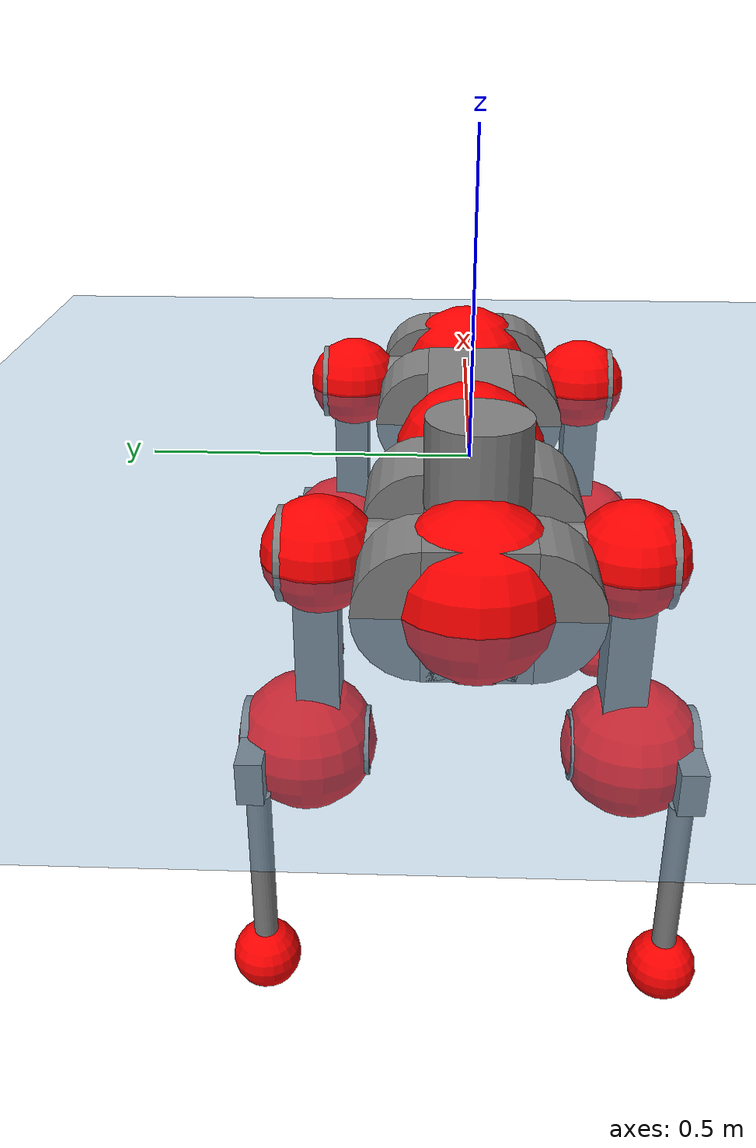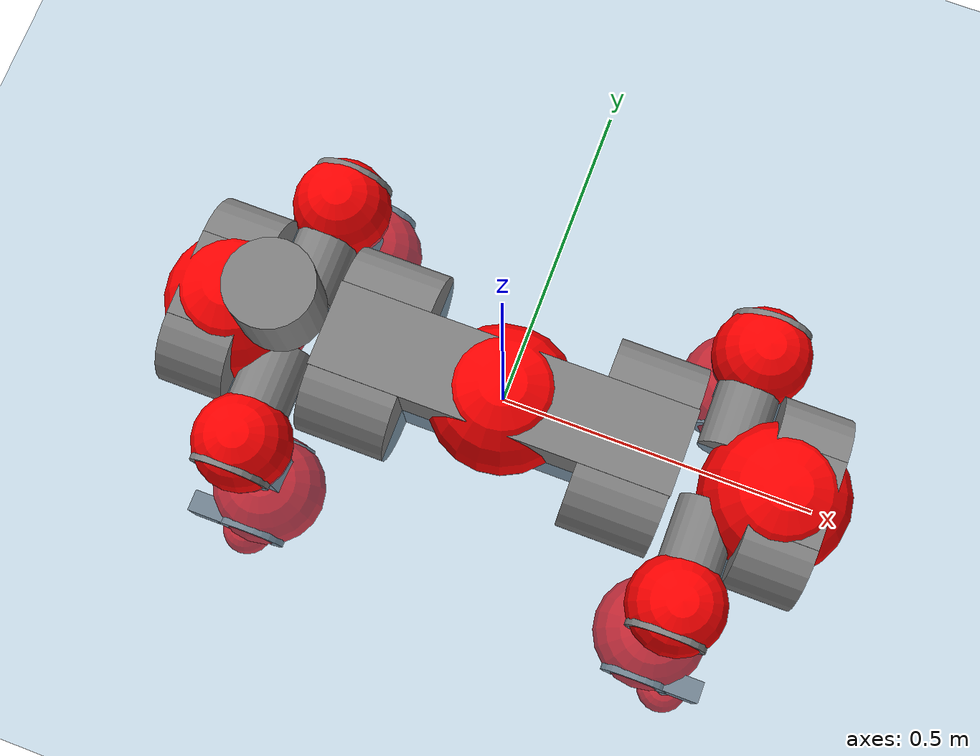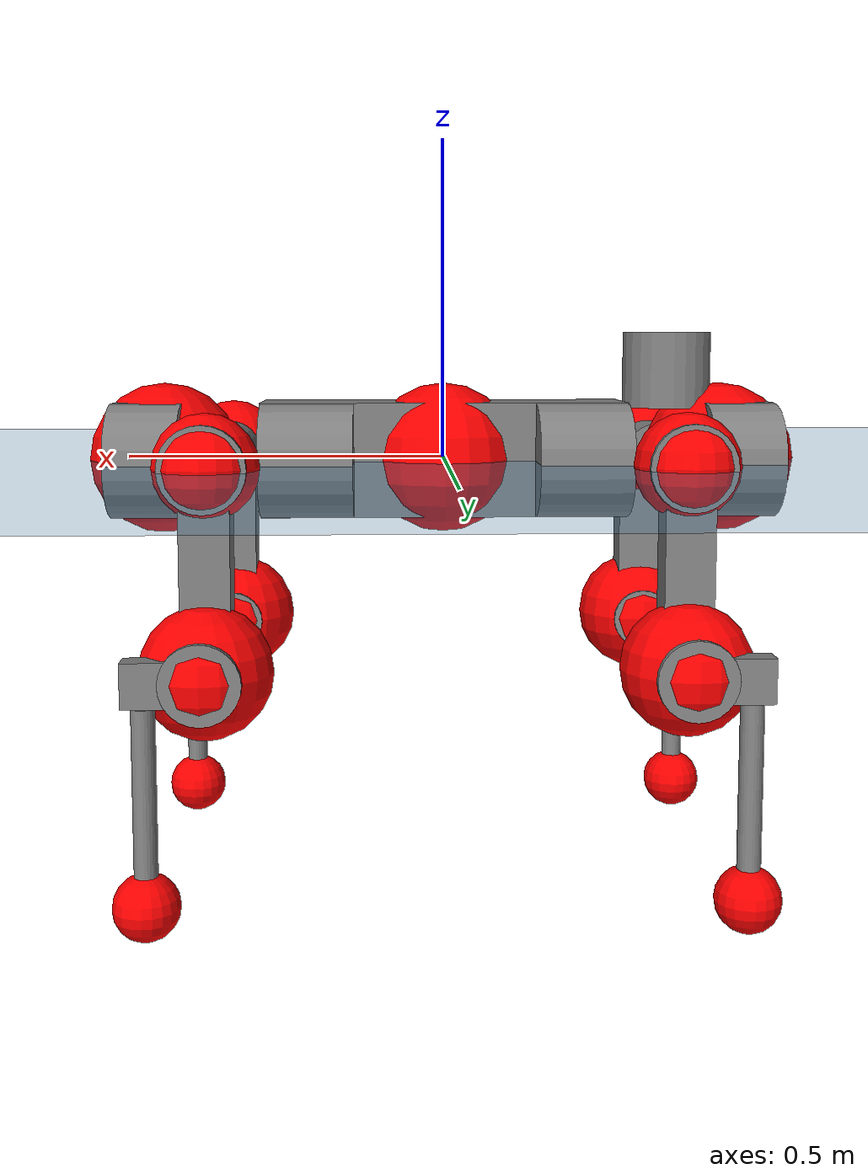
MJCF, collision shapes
<mujoco model="anymal_c">
  <compiler angle="radian" assetdir="assets" balanceinertia="true" inertiafromgeom="false"/>

  <option timestep="0.005" density="1.2" viscosity="2e-05"/>

  <size nkey="1"/>

  <visual>
    <quality shadowsize="8192"/>
    <map shadowclip="0.5"/>
  </visual>

  <default>
    <default class="/">
      <material specular="0" shininess="0.25"/>
      <geom contype="0" conaffinity="0" group="1" solref="-1000 -80"/>
      <site size="0.01 0.005 0.005" group="5"/>
      <general forcelimited="true" forcerange="-80 80" biastype="affine" gainprm="80" biasprm="0 -80 -2"/>
      <default class="anymal_c">
        <joint armature="0.01" damping="0.01" frictionloss="0.1"/>
        <default class="visual">
          <geom type="mesh" group="2"/>
          <default class="visual_zflip"/>
        </default>
        <default class="collision">
          <geom type="cylinder" group="3"/>
          <default class="foot">
            <geom size="0.03 0 0" type="sphere" condim="6" priority="1" friction="0.8 0.02 0.01" solimp="0.015 1 0.03"/>
          </default>
        </default>
      </default>
      <default class="reward_collision_sphere">
        <geom group="5" rgba="1 0 0 1"/>
      </default>
    </default>
  </default>

  <asset>
    <texture type="skybox" colorspace="auto" name="//unnamed_texture_0" builtin="gradient" rgb1="0.95 0.95 0.95" rgb2="0.95 0.95 0.95" width="100" height="600"/>
    <texture type="2d" colorspace="auto" name="texplane" builtin="checker" rgb1="0.345 0.575 0.748" rgb2="0.345 0.575 0.748" markrgb="1 1 1" width="512" height="512"/>
    <texture type="2d" colorspace="linear" name="base" file="base.png"/>
    <texture type="2d" colorspace="linear" name="top_shell" file="top_shell.png"/>
    <texture type="2d" colorspace="linear" name="bottom_shell" file="bottom_shell.png"/>
    <texture type="2d" colorspace="linear" name="remote" file="remote.png"/>
    <texture type="2d" colorspace="linear" name="hatch" file="hatch.png"/>
    <texture type="2d" colorspace="linear" name="handle" file="handle.png"/>
    <texture type="2d" colorspace="linear" name="face" file="face.png"/>
    <texture type="2d" colorspace="linear" name="battery" file="battery.png"/>
    <texture type="2d" colorspace="linear" name="lidar_cage" file="lidar_cage.png"/>
    <texture type="2d" colorspace="linear" name="depth_camera" file="depth_camera.png"/>
    <texture type="2d" colorspace="linear" name="wide_angle_camera" file="wide_angle_camera.png"/>
    <texture type="2d" colorspace="linear" name="lidar" file="lidar.png"/>
    <texture type="2d" colorspace="linear" name="drive" file="drive.png"/>
    <texture type="2d" colorspace="linear" name="hip_l" file="hip_l.png"/>
    <texture type="2d" colorspace="linear" name="shank_l" file="shank_l.png"/>
    <texture type="2d" colorspace="linear" name="foot" file="foot.png"/>
    <texture type="2d" colorspace="linear" name="thigh" file="thigh.png"/>
    <texture type="2d" colorspace="linear" name="shank_r" file="shank_r.png"/>
    <texture type="2d" colorspace="linear" name="hip_r" file="hip_r.png"/>
    <material name="MatPlane" class="/" texture="texplane" texuniform="true" texrepeat="2 2" specular="0.9" shininess="0.5"/>
    <material name="black_plastic" class="/" rgba="0.007 0.007 0.007 1"/>
    <material name="green" class="/" rgba="0.052 0.178 0.033 1"/>
    <material name="red" class="/" rgba="0.178 0.006 0.005 1"/>
    <material name="yellow" class="/" rgba="0.178 0.119 0.006 1"/>
    <material name="lwl" class="/" rgba="0.8 0.8 0.8 1"/>
    <material name="base" class="/" texture="base"/>
    <material name="top_shell" class="/" texture="top_shell"/>
    <material name="bottom_shell" class="/" texture="bottom_shell"/>
    <material name="hip_l" class="/" texture="hip_l"/>
    <material name="thigh" class="/" texture="thigh"/>
    <material name="shank_l" class="/" texture="shank_l"/>
    <material name="foot" class="/" texture="foot"/>
    <material name="hip_r" class="/" texture="hip_r"/>
    <material name="shank" class="/" texture="shank_r"/>
    <material name="hatch" class="/" texture="hatch"/>
    <material name="remote" class="/" texture="remote"/>
    <material name="handle" class="/" texture="handle"/>
    <material name="face" class="/" texture="face"/>
    <material name="depth_camera" class="/" texture="depth_camera"/>
    <material name="wide_angle_camera" class="/" texture="wide_angle_camera"/>
    <material name="battery" class="/" texture="battery"/>
    <material name="lidar_cage" class="/" texture="lidar_cage"/>
    <material name="lidar" class="/" texture="lidar"/>
    <material name="drive" class="/" texture="drive"/>
    <mesh name="base_0" class="/" file="base_0.obj"/>
    <mesh name="base_1" class="/" file="base_1.obj"/>
    <mesh name="base_2" class="/" file="base_2.obj"/>
    <mesh name="base_3" class="/" file="base_3.obj"/>
    <mesh name="base_4" class="/" file="base_4.obj"/>
    <mesh name="base_5" class="/" file="base_5.obj"/>
    <mesh name="top_shell" class="/" file="top_shell.obj"/>
    <mesh name="bottom_shell" class="/" file="bottom_shell.obj"/>
    <mesh name="remote" class="/" file="remote.obj"/>
    <mesh name="handle" class="/" file="handle.obj"/>
    <mesh name="face" class="/" file="face.obj"/>
    <mesh name="wide_angle_camera" class="/" file="wide_angle_camera.obj"/>
    <mesh name="depth_camera" class="/" file="depth_camera.obj"/>
    <mesh name="battery" class="/" file="battery.obj"/>
    <mesh name="lidar_cage" class="/" file="lidar_cage.obj"/>
    <mesh name="lidar" class="/" file="lidar.obj"/>
    <mesh name="drive" class="/" file="drive.obj"/>
    <mesh name="hip_l" class="/" file="hip_l.obj"/>
    <mesh name="thigh" class="/" file="thigh.obj"/>
    <mesh name="shank_l" class="/" file="shank_l.obj"/>
    <mesh name="foot" class="/" file="foot.obj"/>
    <mesh name="hip_r" class="/" file="hip_r.obj"/>
    <mesh name="hatch" class="/" file="hatch.obj"/>
    <mesh name="shank_r" class="/" file="shank_r.obj"/>
  </asset>

  <worldbody>
    <geom name="floor" class="/" size="100 100 0.125" type="plane" group="0" material="MatPlane"/>
    <light name="toplight_shadow" class="/" pos="0 0 5" dir="0.0990148 0.0990148 -0.990148" type="directional" ambient="0.04 0.04 0.04" diffuse="0.55 0.55 0.55" specular="0.12 0.12 0.12"/>
    <light name="toplight_fill" class="/" pos="0 0 5" dir="0.0990148 0.0990148 -0.990148" type="directional" castshadow="false" ambient="0.04 0.04 0.04" diffuse="0.3 0.3 0.3" specular="0.08 0.08 0.08"/>
    <body name="trunk" childclass="anymal_c" pos="-6.01191e-05 -0.00012301 -0.000286898" quat="1 -8.54651e-06 -1.17303e-06 3.21949e-05">
      <inertial pos="0.00207074 -0.000713407 0.0525279" quat="0.50055 0.499897 0.500297 0.499255" mass="18.8201" diaginertia="0.582045 0.469008 0.26933"/>
      <joint name="//unnamed_joint_0" type="free" armature="0" damping="0" frictionloss="0"/>
      <geom name="//unnamed_geom_1" class="visual" material="green" mesh="base_0"/>
      <geom name="//unnamed_geom_2" class="visual" material="yellow" mesh="base_1"/>
      <geom name="//unnamed_geom_3" class="visual" material="red" mesh="base_2"/>
      <geom name="//unnamed_geom_4" class="visual" material="black_plastic" mesh="base_3"/>
      <geom name="//unnamed_geom_5" class="visual" material="lwl" mesh="base_4"/>
      <geom name="//unnamed_geom_6" class="visual" material="base" mesh="base_5"/>
      <geom name="trunk_1" class="collision" size="0.286931 0.0692593 0.0890476" type="box"/>
      <geom name="trunk_2" class="collision" size="0.0890476 0.0717328" pos="0.213217 0.0661347 0" quat="0.707107 0 0.707107 0"/>
      <geom name="trunk_3" class="collision" size="0.0890476 0.0717328" pos="-0.213217 0.0661347 0" quat="0.707107 0 0.707107 0"/>
      <geom name="trunk_4" class="collision" size="0.0890476 0.0717328" pos="0.213217 -0.0661347 0" quat="0.707107 0 0.707107 0"/>
      <geom name="trunk_5" class="collision" size="0.0890476 0.0717328" pos="-0.213217 -0.0661347 0" quat="0.707107 0 0.707107 0"/>
      <geom name="//unnamed_geom_12" class="visual" material="top_shell" mesh="top_shell"/>
      <geom name="//unnamed_geom_13" class="visual" material="bottom_shell" mesh="bottom_shell"/>
      <geom name="//unnamed_geom_14" class="visual" material="remote" mesh="remote"/>
      <geom name="//unnamed_geom_15" class="visual" material="handle" mesh="handle"/>
      <geom name="//unnamed_geom_16" class="visual" pos="0.406339 0 0" quat="1 0 0 0" material="face" mesh="face"/>
      <geom name="trunk_6" class="collision" size="0.054418 0.0692593 0.0890476" pos="0.460256 0 0" type="box"/>
      <geom name="//unnamed_geom_18" class="collision" size="0.0890476 0.054418" pos="0.460256 0.0661347 0" quat="0.707107 0 0.707107 0"/>
      <geom name="//unnamed_geom_19" class="collision" size="0.0890476 0.054418" pos="0.460256 -0.0661347 0" quat="0.707107 0 0.707107 0"/>
      <geom name="//unnamed_geom_20" class="visual" pos="0.452563 0 -0.030938" quat="0.965926 0 0.258819 0" material="depth_camera" mesh="depth_camera"/>
      <geom name="//unnamed_geom_21" class="visual" pos="0.502899 0 0.0156161" material="wide_angle_camera" mesh="wide_angle_camera"/>
      <geom name="//unnamed_geom_22" class="visual_zflip" pos="-0.406339 0 0" quat="0 0 0 1" material="face" mesh="face"/>
      <geom name="trunk_7" class="collision" size="0.054418 0.0692593 0.0890476" pos="-0.460256 0 0" quat="0 0 0 1" type="box"/>
      <geom name="//unnamed_geom_24" class="collision" size="0.0890476 0.054418" pos="-0.460256 -0.0661347 0" quat="0 -0.707107 0 0.707107"/>
      <geom name="//unnamed_geom_25" class="collision" size="0.0890476 0.054418" pos="-0.460256 0.0661347 0" quat="0 -0.707107 0 0.707107"/>
      <geom name="//unnamed_geom_26" class="visual" pos="-0.452563 0 -0.030938" quat="0 -0.258819 0 0.965926" material="depth_camera" mesh="depth_camera"/>
      <geom name="//unnamed_geom_27" class="visual_zflip" pos="-0.502899 0 0.0156161" quat="0 0 0 1" material="wide_angle_camera" mesh="wide_angle_camera"/>
      <geom name="//unnamed_geom_28" class="visual" material="battery" mesh="battery"/>
      <geom name="//unnamed_geom_29" class="visual" pos="0 0.0717744 0.0298262" quat="0.683013 -0.183013 0.183013 0.683013" material="depth_camera" mesh="depth_camera"/>
      <geom name="//unnamed_geom_30" class="visual" pos="0 -0.0717744 0.0298262" quat="0.683013 0.183013 0.183013 -0.683013" material="depth_camera" mesh="depth_camera"/>
      <geom name="//unnamed_geom_31" class="visual" pos="-0.356833 0 0.0766725" quat="1 0 0 0" material="lidar_cage" mesh="lidar_cage"/>
      <geom name="trunk_8" class="collision" size="0.0692593 0.0593651" pos="-0.356833 0 0.139262"/>
      <geom name="//unnamed_geom_33" class="visual" pos="-0.356833 -1.39583e-05 0.148338" quat="0.707107 0 0 -0.707107" material="lidar" mesh="lidar"/>
      <geom name="//unnamed_geom_34" class="visual" pos="0.293995 0.0982922 -1.69709e-09" quat="0.258819 0.965926 0 0" material="drive" mesh="drive"/>
      <geom name="//unnamed_geom_35" class="visual" pos="0.293995 -0.0982922 1.69709e-09" quat="0.258819 -0.965926 0 0" material="drive" mesh="drive"/>
      <geom name="//unnamed_geom_36" class="visual" pos="-0.293995 0.0982922 1.69709e-09" quat="0 0 0.965926 -0.258819" material="drive" mesh="drive"/>
      <geom name="//unnamed_geom_37" class="visual" pos="-0.293995 -0.0982922 -1.69709e-09" quat="0 0 -0.965926 -0.258819" material="drive" mesh="drive"/>
      <geom name="//unnamed_geom_38" class="visual" pos="0.113716 0 0.0761509" quat="1 0 0 0" material="hatch" mesh="hatch"/>
      <geom name="//unnamed_geom_39" class="reward_collision_sphere" size="0.11873"/>
      <geom name="//unnamed_geom_40" class="reward_collision_sphere" size="0.11873" pos="0.44114 0 0"/>
      <geom name="//unnamed_geom_41" class="reward_collision_sphere" size="0.11873" pos="-0.44114 0 0"/>
      <site name="imu" pos="0.245783 0.00396487 0.0519232" size="0.00989418"/>
      <camera name="track" pos="0 -1.88956 0" quat="0.707107 0.707107 0 0" mode="trackcom"/>
      <camera name="ego_camera" pos="0.44114 0 -0.0417265" quat="-0.5 -0.5 0.5 0.5"/>
      <body name="LF_HIP" pos="0.294453 0.0982292 -0.000667911" quat="0.258699 0.965958 7.56641e-05 -0.00014486">
        <inertial pos="0.0558411 -0.0140849 -0.00881184" quat="-0.127835 0.709531 -0.136199 0.679466" mass="2.71973" diaginertia="0.00529816 0.00371875 0.00410377"/>
        <joint name="LF_HAA" pos="0 0 0" axis="0.999988 -0.00444299 -0.00213154" range="-0.722047 0.476828" armature="0.00987807" damping="0.0144143" frictionloss="0.0957332"/>
        <geom name="//unnamed_geom_42" class="visual" pos="0 -9.9832e-05 1.63973e-05" quat="0.258819 -0.965926 0 0" material="hip_l" mesh="hip_l"/>
        <geom name="//unnamed_geom_43" class="visual" pos="0.0587206 -0.0707196 -0.0415577" quat="0.183013 -0.683013 0.683013 0.183013" material="drive" mesh="drive"/>
        <geom name="//unnamed_geom_44" class="collision" size="0.0494709 0.0692593" pos="0.0587206 -0.0112994 -0.00720304" quat="-0.353553 -0.612372 0.612372 -0.353553"/>
        <body name="LF_THIGH" pos="0.0597671 -0.069823 -0.0441646" quat="0.183046 -0.683082 0.682942 0.182985">
          <inertial pos="0.0303654 0.000227894 -0.256099" quat="0.993156 -0.00633764 -0.0813015 0.083609" mass="3.00693" diaginertia="0.0276716 0.0226054 0.00523768"/>
          <joint name="LF_HFE" pos="0 0 0" axis="0.999995 0.00178518 -0.00278089" stiffness="0.00373037" range="-3.12736 3.13977" armature="0.010266" damping="0.00449139" frictionloss="0.0990165"/>
          <geom name="//unnamed_geom_45" class="visual" pos="0.000706881 1.11388e-06 0" quat="0.707107 0 0 -0.707107" material="thigh" mesh="thigh"/>
          <geom name="//unnamed_geom_46" class="collision" size="0.0643122 0.0395767" pos="0.0392124 0 0" quat="0.5 0.5 -0.5 -0.5"/>
          <geom name="//unnamed_geom_47" class="collision" size="0.0371032 0.0296825 0.139819" pos="0.0294093 0 -0.147414" quat="0.707107 0 0 -0.707107" type="box"/>
          <geom name="//unnamed_geom_48" class="visual" pos="0.0983251 0 -0.297301" quat="1 0 0 0" material="drive" mesh="drive"/>
          <geom name="//unnamed_geom_49" class="collision" size="0.0494709 0.0692593" pos="0.0297034 0 -0.297301" quat="0.707107 0 0.707107 0"/>
          <geom name="//unnamed_geom_50" class="reward_collision_sphere" size="0.0791535" pos="0.0245078 0 0"/>
          <body name="LF_SHANK" pos="0.0987677 -0.000348522 -0.29743" quat="1 -3.71924e-06 -7.51494e-07 -1.27355e-05">
            <inertial pos="0.00463084 -0.0578829 -0.0840786" quat="0.992924 -0.116086 -0.00148093 -0.0249795" mass="0.569969" diaginertia="0.0092175 0.00693138 0.001384"/>
            <joint name="LF_KFE" pos="0 0 0" axis="0.999997 0.0018847 -0.00138056" stiffness="0.000159503" range="-3.15271 3.12401" armature="0.00967983" damping="0.00777266" frictionloss="0.101026"/>
            <geom name="//unnamed_geom_51" class="visual" pos="0.000230498 0.00122903 0" quat="0.707107 0 0 -0.707107" material="shank_l" mesh="shank_l"/>
            <geom name="LF_kfe_act" class="collision" size="0.0593651 0.0197884" pos="0.0196062 0 0" quat="0.5 0.5 -0.5 -0.5"/>
            <geom name="//unnamed_geom_53" class="collision" size="0.0568906 0.0333929 0.0187989" pos="0.0196062 -0.054324 0" quat="0.5 0.5 -0.5 -0.5" type="box"/>
            <geom name="//unnamed_geom_54" class="visual" pos="0.012793 -0.0826975 -0.352558" quat="0.382683 0 0 -0.92388" material="foot" mesh="foot"/>
            <geom name="LF_calf" class="collision" size="0.0173148 0.139757" pos="0.012793 -0.0830935 -0.176279" quat="0.707107 0 0 -0.707107"/>
            <geom name="LF_foot" class="foot" size="0.0300198" pos="0.012793 -0.0830935 -0.329087" quat="0.707107 0 0 -0.707107"/>
            <geom name="//unnamed_geom_57" class="reward_collision_sphere" size="0.0989418" pos="-0.0490155 0 0"/>
            <geom name="//unnamed_geom_58" class="reward_collision_sphere" size="0.0494709" pos="0.012793 -0.0830935 -0.329087"/>
            <site name="LF_foot" class="foot" pos="0.012793 -0.0830935 -0.329087" quat="0.707107 0 0 -0.707107" size="0.00989418"/>
          </body>
        </body>
      </body>
      <body name="RF_HIP" pos="0.295028 -0.0985998 -0.000368441" quat="0.258886 -0.965908 0.0001832 -6.43316e-05">
        <inertial pos="0.0557183 0.0148572 -0.00864344" quat="0.133674 0.678553 0.128131 0.71083" mass="2.69443" diaginertia="0.00530295 0.00367969 0.00405058"/>
        <joint name="RF_HAA" pos="0 0 0" axis="0.999989 -0.00337416 -0.00320153" range="-0.498143 0.733167" armature="0.0101238" damping="0.0136618" frictionloss="0.0946809"/>
        <geom name="//unnamed_geom_59" class="visual" pos="0 9.98312e-05 1.63973e-05" quat="0.258819 0.965926 0 0" material="hip_r" mesh="hip_r"/>
        <geom name="//unnamed_geom_60" class="visual" pos="0.0587206 0.0707196 -0.0415577" quat="0.183013 0.683013 0.683013 -0.183013" material="drive" mesh="drive"/>
        <geom name="//unnamed_geom_61" class="collision" size="0.0494709 0.0692593" pos="0.0587206 0.0112994 -0.00720304" quat="-0.353553 0.612372 0.612372 0.353553"/>
        <body name="RF_THIGH" pos="0.0592439 0.069508 -0.0437644" quat="0.182994 0.682927 0.683038 -0.183258">
          <inertial pos="0.0307063 2.8105e-05 -0.256452" quat="0.992661 -0.00370882 -0.0822106 0.0886077" mass="2.94478" diaginertia="0.0273689 0.0226743 0.0051474"/>
          <joint name="RF_HFE" pos="0 0 0" axis="0.999999 0.000506683 -0.00110491" stiffness="0.00164096" range="-3.14362 3.15466" armature="0.0100506" damping="0.00288007" frictionloss="0.102434"/>
          <geom name="//unnamed_geom_62" class="visual" pos="0.000706881 1.11388e-06 0" quat="0.707107 0 0 -0.707107" material="thigh" mesh="thigh"/>
          <geom name="//unnamed_geom_63" class="collision" size="0.0643122 0.0395767" pos="0.0392124 0 0" quat="0.5 0.5 0.5 0.5"/>
          <geom name="//unnamed_geom_64" class="collision" size="0.0371032 0.0296825 0.139819" pos="0.0294093 0 -0.147414" quat="0.707107 0 0 0.707107" type="box"/>
          <geom name="//unnamed_geom_65" class="visual" pos="0.0983251 0 -0.297301" quat="1 0 0 0" material="drive" mesh="drive"/>
          <geom name="//unnamed_geom_66" class="collision" size="0.0494709 0.0692593" pos="0.0297034 0 -0.297301" quat="0.707107 0 0.707107 0"/>
          <geom name="//unnamed_geom_67" class="reward_collision_sphere" size="0.0791535" pos="0.0245078 0 0"/>
          <body name="RF_SHANK" pos="0.0979256 0.00052452 -0.297007" quat="1 -1.47722e-05 0.000126272 0.000159314">
            <inertial pos="0.00509043 0.0581072 -0.0846782" quat="0.993096 0.114361 0.00104182 0.0261012" mass="0.569539" diaginertia="0.0092473 0.00693338 0.00139977"/>
            <joint name="RF_KFE" pos="0 0 0" axis="0.999997 0.00211209 0.00114632" range="-3.13294 3.13789" armature="0.0099857" damping="0.0111916" frictionloss="0.101526"/>
            <geom name="//unnamed_geom_68" class="visual" pos="0.000230497 -0.00122903 0" quat="0.707107 0 0 0.707107" material="shank" mesh="shank_r"/>
            <geom name="RF_kfe_act" class="collision" size="0.0593651 0.0197884" pos="0.0196062 0 0" quat="0.5 0.5 0.5 0.5"/>
            <geom name="//unnamed_geom_70" class="collision" size="0.0568906 0.0333929 0.0187989" pos="0.0196062 0.054324 0" quat="0.5 0.5 0.5 0.5" type="box"/>
            <geom name="//unnamed_geom_71" class="visual" pos="0.0127931 0.0826975 -0.352558" quat="0.382683 0 0 0.92388" material="foot" mesh="foot"/>
            <geom name="RF_calf" class="collision" size="0.0173148 0.139757" pos="0.012793 0.0830935 -0.176279" quat="0.707107 0 0 0.707107"/>
            <geom name="RF_foot" class="foot" size="0.0298581" pos="0.012793 0.0830935 -0.329087" quat="0.707107 0 0 0.707107"/>
            <geom name="//unnamed_geom_74" class="reward_collision_sphere" size="0.0989418" pos="-0.0490155 0 0"/>
            <geom name="//unnamed_geom_75" class="reward_collision_sphere" size="0.0494709" pos="0.012793 0.0830935 -0.329087"/>
            <site name="RF_foot" class="foot" pos="0.012793 0.0830935 -0.329087" quat="0.707107 0 0 0.707107" size="0.00989418"/>
          </body>
        </body>
      </body>
      <body name="LH_HIP" pos="-0.29331 0.0991382 -7.17751e-05" quat="0.00019531 -0.00018528 0.965932 -0.258796">
        <inertial pos="0.0553185 0.0143881 -0.00907541" quat="0.135523 0.679063 0.128197 0.70998" mass="2.7256" diaginertia="0.00538869 0.00373419 0.00414251"/>
        <joint name="LH_HAA" pos="0 0 0" axis="1 3.96509e-05 -5.22305e-07" range="-0.487093 0.720996" armature="0.00963499" damping="0.00726552" frictionloss="0.0990747"/>
        <geom name="//unnamed_geom_76" class="visual" pos="0 9.98312e-05 1.63973e-05" quat="-0.258819 -0.965926 0 0" material="hip_r" mesh="hip_r"/>
        <geom name="//unnamed_geom_77" class="visual" pos="0.0587206 0.0707196 -0.0415577" quat="0.183013 0.683013 0.683013 -0.183013" material="drive" mesh="drive"/>
        <geom name="//unnamed_geom_78" class="collision" size="0.0494709 0.0692593" pos="0.0587206 0.0112994 -0.00720304" quat="-0.353553 0.612372 0.612372 0.353553"/>
        <body name="LH_THIGH" pos="0.0579355 0.0688901 -0.0431957" quat="0.182966 0.683026 0.683073 -0.182784">
          <inertial pos="0.0308397 0.000740986 -0.256574" quat="0.992785 -0.00514772 -0.0805937 0.0886343" mass="3.0059" diaginertia="0.0276088 0.0227231 0.0051581"/>
          <joint name="LH_HFE" pos="0 0 0" axis="0.999998 -0.00142871 -0.00166589" range="-3.12435 3.13791" armature="0.00990072" damping="0.00414846" frictionloss="0.0971729"/>
          <geom name="//unnamed_geom_79" class="visual" pos="0.000706881 1.11388e-06 0" quat="0.707107 0 0 -0.707107" material="thigh" mesh="thigh"/>
          <geom name="//unnamed_geom_80" class="collision" size="0.0643122 0.0395767" pos="0.0392124 0 0" quat="0.5 0.5 -0.5 -0.5"/>
          <geom name="//unnamed_geom_81" class="collision" size="0.0371032 0.0296825 0.139819" pos="0.0294093 0 -0.147414" quat="0.707107 0 0 -0.707107" type="box"/>
          <geom name="//unnamed_geom_82" class="visual" pos="0.0983251 0 -0.297301" quat="1 0 0 0" material="drive" mesh="drive"/>
          <geom name="//unnamed_geom_83" class="collision" size="0.0494709 0.0692593" pos="0.0297034 0 -0.297301" quat="0.707107 0 0.707107 0"/>
          <geom name="//unnamed_geom_84" class="reward_collision_sphere" size="0.0791535" pos="0.0245078 0 0"/>
          <body name="LH_SHANK" pos="0.0989624 -0.00110497 -0.297389" quat="1 -5.38067e-05 -0.000178477 0.000121453">
            <inertial pos="0.0051586 0.0569708 -0.0846271" quat="0.992941 0.115638 -0.000566972 0.0263756" mass="0.574743" diaginertia="0.00931155 0.00708053 0.00139286"/>
            <joint name="LH_KFE" pos="0 0 0" axis="0.999998 0.00208379 7.8467e-05" range="-3.14228 3.12709" armature="0.00975168" damping="0.00387871" frictionloss="0.0991959"/>
            <geom name="//unnamed_geom_85" class="visual" pos="0.000230497 -0.00122903 0" quat="-0.707107 0 0 -0.707107" material="shank" mesh="shank_r"/>
            <geom name="LH_kfe_act" class="collision" size="0.0593651 0.0197884" pos="0.0196062 0 0" quat="0.5 0.5 -0.5 -0.5"/>
            <geom name="//unnamed_geom_87" class="collision" size="0.0568906 0.0333929 0.0187989" pos="0.0196062 0.054324 0" quat="0.5 0.5 -0.5 -0.5" type="box"/>
            <geom name="//unnamed_geom_88" class="visual" pos="0.0127931 0.0826975 -0.352558" quat="-0.382683 0 0 -0.92388" material="foot" mesh="foot"/>
            <geom name="LH_calf" class="collision" size="0.0173148 0.139757" pos="0.012793 0.0830935 -0.176279" quat="0.707107 0 0 -0.707107"/>
            <geom name="LH_foot" class="foot" size="0.0307605" pos="0.012793 0.0830935 -0.329087" quat="0.707107 0 0 -0.707107"/>
            <geom name="//unnamed_geom_91" class="reward_collision_sphere" size="0.0989418" pos="-0.0490155 0 0"/>
            <geom name="//unnamed_geom_92" class="reward_collision_sphere" size="0.0494709" pos="0.012793 0.0830935 -0.329087"/>
            <site name="LH_foot" class="foot" pos="0.012793 0.0830935 -0.329087" quat="0.707107 0 0 -0.707107" size="0.00989418"/>
          </body>
        </body>
      </body>
      <body name="RH_HIP" pos="-0.293352 -0.0982481 -0.00039881" quat="-9.2065e-05 -7.83051e-05 -0.965874 -0.259014">
        <inertial pos="0.0562067 -0.0137451 -0.00880062" quat="-0.127752 0.709306 -0.135194 0.679917" mass="2.67865" diaginertia="0.00532408 0.00372444 0.00404598"/>
        <joint name="RH_HAA" pos="0 0 0" axis="0.999988 0.00145612 -0.0046999" stiffness="0.000267428" range="-0.712581 0.492976" armature="0.00986541" damping="0.0110846" frictionloss="0.101897"/>
        <geom name="//unnamed_geom_93" class="visual" pos="0 -9.9832e-05 1.63973e-05" quat="-0.258819 0.965926 0 0" material="hip_l" mesh="hip_l"/>
        <geom name="//unnamed_geom_94" class="visual" pos="0.0587206 -0.0707196 -0.0415577" quat="-0.183013 0.683013 -0.683013 -0.183013" material="drive" mesh="drive"/>
        <geom name="//unnamed_geom_95" class="collision" size="0.0494709 0.0692593" pos="0.0587206 -0.0112994 -0.00720304" quat="0.353553 0.612372 -0.612372 0.353553"/>
        <body name="RH_THIGH" pos="0.0587763 -0.0685213 -0.0434115" quat="-0.183027 0.682932 -0.683143 -0.182811">
          <inertial pos="0.0301209 0.000663163 -0.255748" quat="0.992997 -0.0019343 -0.0799019 0.0869947" mass="2.94366" diaginertia="0.02712 0.0223872 0.00517882"/>
          <joint name="RH_HFE" pos="0 0 0" axis="0.999998 -0.00155498 0.00100061" range="-3.13647 3.15831" armature="0.00987963" damping="0.0114903" frictionloss="0.0967094"/>
          <geom name="//unnamed_geom_96" class="visual" pos="0.000706881 1.11388e-06 0" quat="0.707107 0 0 -0.707107" material="thigh" mesh="thigh"/>
          <geom name="//unnamed_geom_97" class="collision" size="0.0643122 0.0395767" pos="0.0392124 0 0" quat="0.5 0.5 0.5 0.5"/>
          <geom name="//unnamed_geom_98" class="collision" size="0.0371032 0.0296825 0.139819" pos="0.0294093 0 -0.147414" quat="0.707107 0 0 0.707107" type="box"/>
          <geom name="//unnamed_geom_99" class="visual" pos="0.0983251 0 -0.297301" quat="1 0 0 0" material="drive" mesh="drive"/>
          <geom name="//unnamed_geom_100" class="collision" size="0.0494709 0.0692593" pos="0.0297034 0 -0.297301" quat="0.707107 0 0.707107 0"/>
          <geom name="//unnamed_geom_101" class="reward_collision_sphere" size="0.0791535" pos="0.0245078 0 0"/>
          <body name="RH_SHANK" pos="0.0977152 -0.00050377 -0.296713" quat="1 -0.00020705 -0.000130303 0.00013381">
            <inertial pos="0.00564238 -0.057649 -0.0840766" quat="0.992856 -0.116576 -0.00150414 -0.0254039" mass="0.561282" diaginertia="0.00908254 0.00682692 0.00136912"/>
            <joint name="RH_KFE" pos="0 0 0" axis="0.999975 -0.00613365 0.00345425" range="-3.13208 3.12653" armature="0.0098851" damping="0.00571033" frictionloss="0.0967867"/>
            <geom name="//unnamed_geom_102" class="visual" pos="0.000230498 0.00122903 0" quat="0.707107 0 0 -0.707107" material="shank_l" mesh="shank_l"/>
            <geom name="RH_kfe_act" class="collision" size="0.0593651 0.0197884" pos="0.0196062 0 0" quat="0.5 0.5 0.5 0.5"/>
            <geom name="//unnamed_geom_104" class="collision" size="0.0568906 0.0333929 0.0187989" pos="0.0196062 -0.054324 0" quat="0.5 0.5 0.5 0.5" type="box"/>
            <geom name="//unnamed_geom_105" class="visual" pos="0.012793 -0.0826975 -0.352558" quat="0.382683 0 0 -0.92388" material="foot" mesh="foot"/>
            <geom name="RH_calf" class="collision" size="0.0173148 0.139757" pos="0.012793 -0.0830935 -0.176279" quat="0.707107 0 0 0.707107"/>
            <geom name="RH_foot" class="foot" size="0.0283829" pos="0.012793 -0.0830935 -0.329087" quat="0.707107 0 0 0.707107"/>
            <geom name="//unnamed_geom_108" class="reward_collision_sphere" size="0.0989418" pos="-0.0490155 0 0"/>
            <geom name="//unnamed_geom_109" class="reward_collision_sphere" size="0.0494709" pos="0.012793 -0.0830935 -0.329087"/>
            <site name="RH_foot" class="foot" pos="0.012793 -0.0830935 -0.329087" quat="0.707107 0 0 0.707107" size="0.00989418"/>
          </body>
        </body>
      </body>
    </body>
  </worldbody>

  <contact>
    <pair class="/" geom1="floor" geom2="LF_foot" name="//unnamed_contact_0"/>
    <pair class="/" geom1="floor" geom2="RF_foot" name="//unnamed_contact_1"/>
    <pair class="/" geom1="floor" geom2="LH_foot" name="//unnamed_contact_2"/>
    <pair class="/" geom1="floor" geom2="RH_foot" name="//unnamed_contact_3"/>
  </contact>

  <actuator>
    <general name="LF_HAA" class="/" joint="LF_HAA" forcerange="-79.7566 79.7566" gainprm="79.9548" biasprm="0 -79.9548 -1.96953"/>
    <general name="LF_HFE" class="/" joint="LF_HFE" forcerange="-80.66 80.66" gainprm="79.9548" biasprm="0 -79.9548 -1.96953"/>
    <general name="LF_KFE" class="/" joint="LF_KFE" forcerange="-77.0377 77.0377" gainprm="79.9548" biasprm="0 -79.9548 -1.96953"/>
    <general name="RF_HAA" class="/" joint="RF_HAA" forcerange="-79.325 79.325" gainprm="79.9548" biasprm="0 -79.9548 -1.96953"/>
    <general name="RF_HFE" class="/" joint="RF_HFE" forcerange="-77.742 77.742" gainprm="79.9548" biasprm="0 -79.9548 -1.96953"/>
    <general name="RF_KFE" class="/" joint="RF_KFE" forcerange="-78.9606 78.9606" gainprm="79.9548" biasprm="0 -79.9548 -1.96953"/>
    <general name="LH_HAA" class="/" joint="LH_HAA" forcerange="-79.1673 79.1673" gainprm="79.9548" biasprm="0 -79.9548 -1.96953"/>
    <general name="LH_HFE" class="/" joint="LH_HFE" forcerange="-79.1544 79.1544" gainprm="79.9548" biasprm="0 -79.9548 -1.96953"/>
    <general name="LH_KFE" class="/" joint="LH_KFE" forcerange="-79.6152 79.6152" gainprm="79.9548" biasprm="0 -79.9548 -1.96953"/>
    <general name="RH_HAA" class="/" joint="RH_HAA" forcerange="-79.5857 79.5857" gainprm="79.9548" biasprm="0 -79.9548 -1.96953"/>
    <general name="RH_HFE" class="/" joint="RH_HFE" forcerange="-78.9898 78.9898" gainprm="79.9548" biasprm="0 -79.9548 -1.96953"/>
    <general name="RH_KFE" class="/" joint="RH_KFE" forcerange="-76.8599 76.8599" gainprm="79.9548" biasprm="0 -79.9548 -1.96953"/>
  </actuator>

  <sensor>
    <gyro site="imu" name="imu_angular_velocity"/>
    <velocimeter site="imu" name="imu_linear_velocity"/>
    <framelinvel objtype="site" objname="LF_foot" name="LF_foot_global_linear_velocity"/>
    <framelinvel objtype="site" objname="RF_foot" name="RF_foot_global_linear_velocity"/>
    <framelinvel objtype="site" objname="LH_foot" name="LH_foot_global_linear_velocity"/>
    <framelinvel objtype="site" objname="RH_foot" name="RH_foot_global_linear_velocity"/>
  </sensor>

  <keyframe>
    <key name="home" qpos="0 0 0.55 1 0 0 0 0 0.4 -0.8 0 -0.4 0.8 0 -0.4 0.8 0 0.4 -0.8"/>
  </keyframe>
</mujoco>
